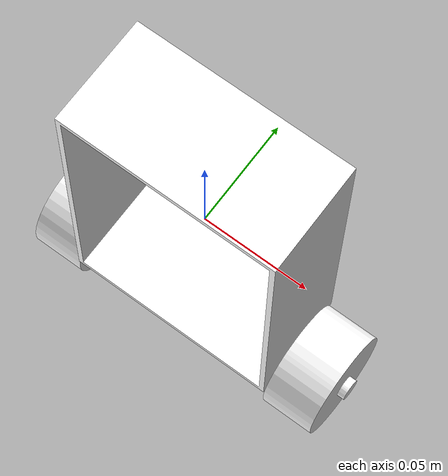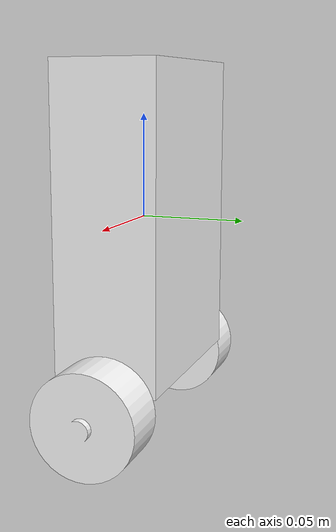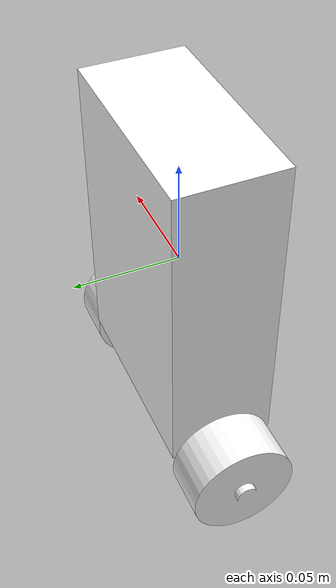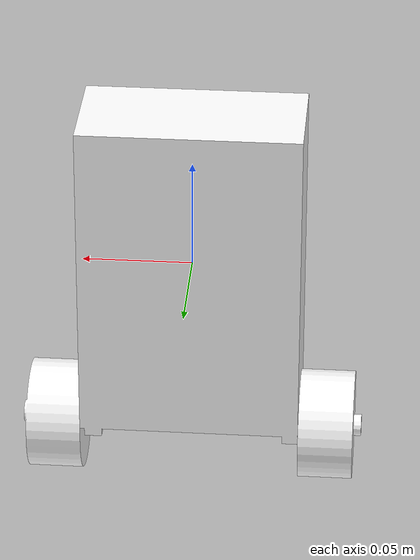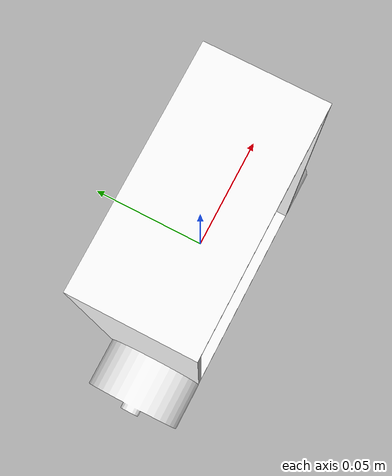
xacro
<?xml version="1.0"?>
<robot xmlns:xacro="https://www.ros.org/wiki/xacro" name="robot">
    <xacro:include filename="$(find inverted_pendulum)/urdf/inverted_pendulum.urdf"/>

    <!-- Gazebo Cosim -->
    <gazebo>
        <plugin name="GazeboPlugin" filename="lib/libGazeboCoSimPlugin.so"><portNumber>14581</portNumber></plugin>
    </gazebo>

    <!-- Wheel Stuff -->
    <transmission name="trans_left_wheel">
        <type>transmission_interface/SimpleTransmission</type>
        <joint name="left_wheel_joint">
            <hardwareInterface>hardware_interface/VelocityJointInterface</hardwareInterface>
        </joint>
        <actuator name="motor_left_wheel">
            <hardwareInterface>hardware_interface/VelocityJointInterface</hardwareInterface>
            <mechanicalReduction>1</mechanicalReduction>
        </actuator>
    </transmission>

    <transmission name="trans_right_wheel">
        <type>transmission_interface/SimpleTransmission</type>
        <joint name="right_wheel_joint">
            <hardwareInterface>hardware_interface/VelocityJointInterface</hardwareInterface>
        </joint>
        <actuator name="motor_right_wheel">
            <hardwareInterface>hardware_interface/VelocityJointInterface</hardwareInterface>
            <mechanicalReduction>1</mechanicalReduction>
        </actuator>
    </transmission>

    <gazebo>
        <plugin name="gazebo_ros_control" filename="libgazebo_ros_control.so"/>
    </gazebo>

    <!-- IMU Sensor -->

    <sensor name="imu_sensor" type="imu">
        <update_rate>50</update_rate>
        <topic>/imu/data</topic>
        <imu>
            <noise>
            <type>gaussian</type>
            <mean>0.0</mean>
            <stddev>0.001</stddev>
            </noise>
        </imu>
    </sensor>
    <gazebo>
        <plugin name="imu_plugin" filename="libgazebo_ros_imu.so">
            <update_rate>50</update_rate>
            <topicName>/imu/data</topicName>
            <frameName>imu_link</frameName>
            <bodyName>imu_link</bodyName>
        </plugin>
    </gazebo>
</robot>

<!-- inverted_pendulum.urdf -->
<robot
  name="inverted_pendulum">
  <link
    name="base_link">
    <inertial>
      <origin
        xyz="-3.26717855560707E-17 -0.00197210793250581 -0.00834319519876685"
        rpy="-1.570796 0 0" />
      <mass
        value="0.0999914801973355" />
      <inertia
        ixx="0.000306925090515305"
        ixy="1.50075261496563E-20"
        ixz="-1.22375042448589E-20"
        iyy="0.000166578860122352"
        iyz="1.64522796127438E-06"
        izz="0.000421608227251848" />
    </inertial>
    <visual>
      <origin
        xyz="0 0 0"
        rpy="0 0 0" />
      <geometry>
        <mesh
          filename="package://inverted_pendulum/meshes/base_link.STL" />
      </geometry>
      <material
        name="">
        <color
          rgba="1 1 1 1" />
      </material>
    </visual>
    <collision>
      <origin
        xyz="0 0 0"
        rpy="0 0 0" />
      <geometry>
        <mesh
          filename="package://inverted_pendulum/meshes/base_link.STL" />
      </geometry>
    </collision>
  </link>
  <link
    name="left_wheel">
    <inertial>
      <origin
        xyz="-1.3878E-17 2.0817E-17 -0.016"
        rpy="0 0 0" />
      <mass
        value="0.05063" />
      <inertia
        ixx="1.0549E-05"
        ixy="-6.3527E-22"
        ixz="-6.1529E-22"
        iyy="1.0549E-05"
        iyz="-2.024E-22"
        izz="1.5654E-05" />
    </inertial>
    <visual>
      <origin
        xyz="0 0 0"
        rpy="0 0 0" />
      <geometry>
        <mesh
          filename="package://inverted_pendulum/meshes/left_wheel.STL" />
      </geometry>
      <material
        name="">
        <color
          rgba="1 1 1 1" />
      </material>
    </visual>
    <collision>
      <origin
        xyz="0 0 0"
        rpy="0 0 0" />
      <geometry>
        <mesh
          filename="package://inverted_pendulum/meshes/left_wheel.STL" />
      </geometry>
    </collision>
  </link>
  <joint
    name="left_wheel_joint"
    type="continuous">
    <origin
      xyz="0.0465 0 -0.0825"
      rpy="1.5708 -1.179 -1.5708" />
    <parent
      link="base_link" />
    <child
      link="left_wheel" />
    <axis
      xyz="0 0 1" />
  </joint>
  <link
    name="right_wheel">
    <inertial>
      <origin
        xyz="-2.7756E-17 2.0817E-17 -0.016"
        rpy="0 0 0" />
      <mass
        value="0.05063" />
      <inertia
        ixx="1.0549E-05"
        ixy="-1.4823E-21"
        ixz="8.9707E-22"
        iyy="1.0549E-05"
        iyz="-4.2423E-22"
        izz="1.5654E-05" />
    </inertial>
    <visual>
      <origin
        xyz="0 0 0"
        rpy="0 0 0" />
      <geometry>
        <mesh
          filename="package://inverted_pendulum/meshes/right_wheel.STL" />
      </geometry>
      <material
        name="">
        <color
          rgba="1 1 1 1" />
      </material>
    </visual>
    <collision>
      <origin
        xyz="0 0 0"
        rpy="0 0 0" />
      <geometry>
        <mesh
          filename="package://inverted_pendulum/meshes/right_wheel.STL" />
      </geometry>
    </collision>
  </link>
  <joint
    name="right_wheel_joint"
    type="continuous">
    <origin
      xyz="-0.0465 0 -0.0825"
      rpy="1.5708 1.179 1.5708" />
    <parent
      link="base_link" />
    <child
      link="right_wheel" />
    <axis
      xyz="0 0 1" />
  </joint>
  <link
    name="imu_link">
    <inertial>
      <origin xyz="0 0 0" rpy="0 0 0"/>
      <mass value="0.01"/>
      <inertia
        ixx="0.0001" ixy="0" ixz="0"
        iyy="0.0001" iyz="0" izz="0.0001"/>
    </inertial>
    <visual>
      <origin
        xyz="0 0 0"
        rpy="0 0 0" />
      <geometry>
        <mesh
          filename="package://inverted_pendulum/meshes/imu_link.STL" />
      </geometry>
      <material
        name="">
        <color
          rgba="1 1 1 1" />
      </material>
    </visual>
    <collision>
      <origin
        xyz="0 0 0"
        rpy="0 0 0" />
      <geometry>
        <mesh
          filename="package://inverted_pendulum/meshes/imu_link.STL" />
      </geometry>
    </collision>
  </link>
  <joint
    name="imu_joint"
    type="fixed">
    <origin
      xyz="0 0 -0.076"
      rpy="1.5708 0 0" />
    <parent
      link="base_link" />
    <child
      link="imu_link" />
    <axis
      xyz="0 0 0" />
  </joint>
</robot>
